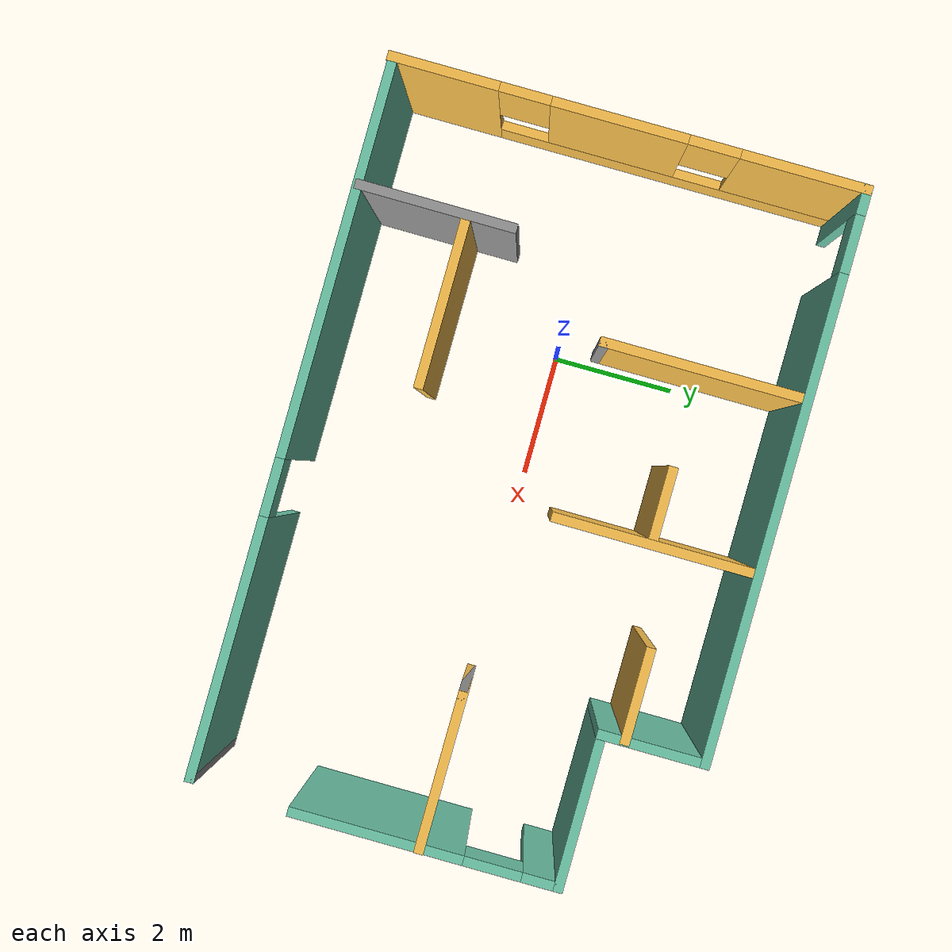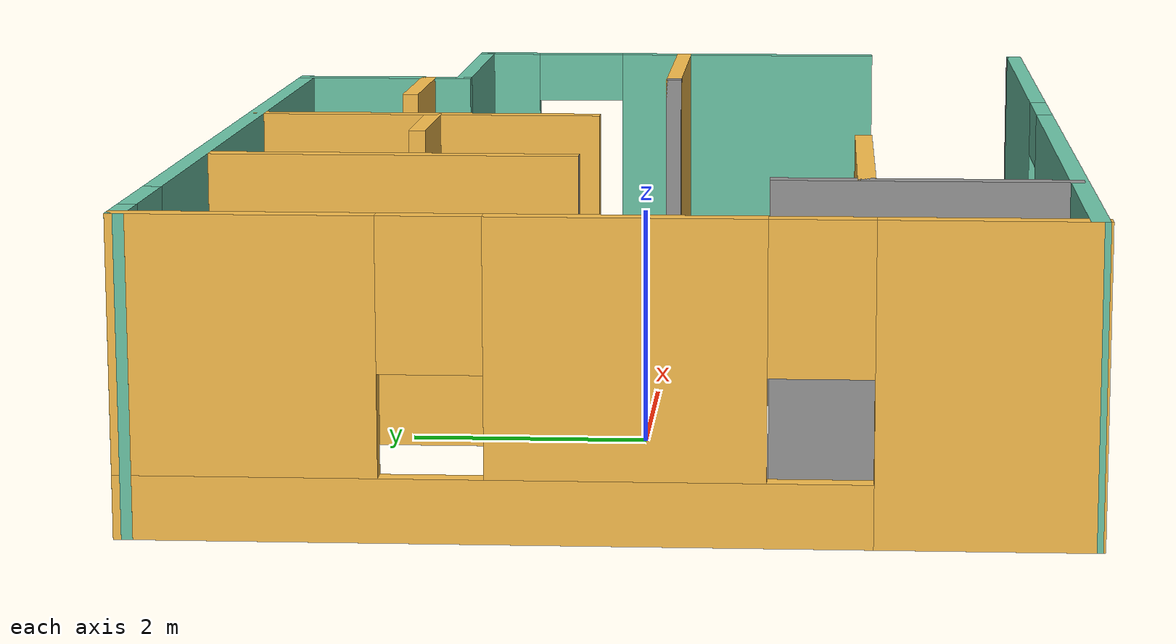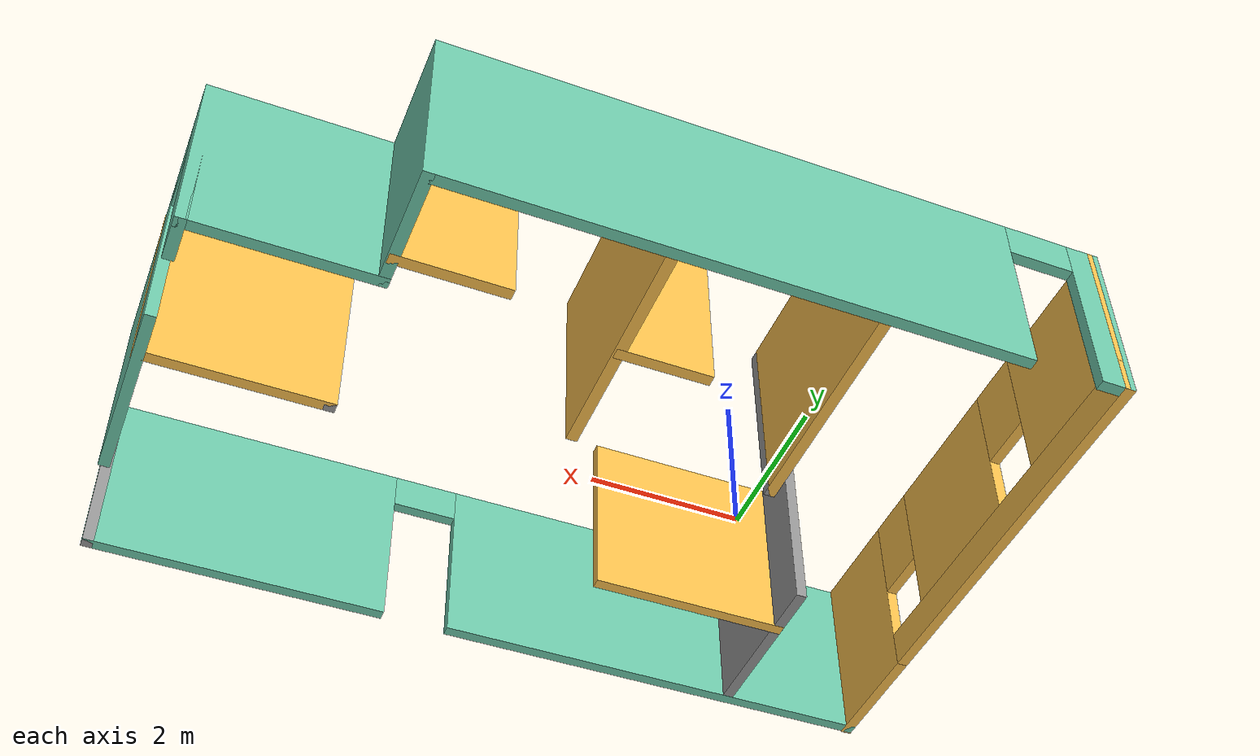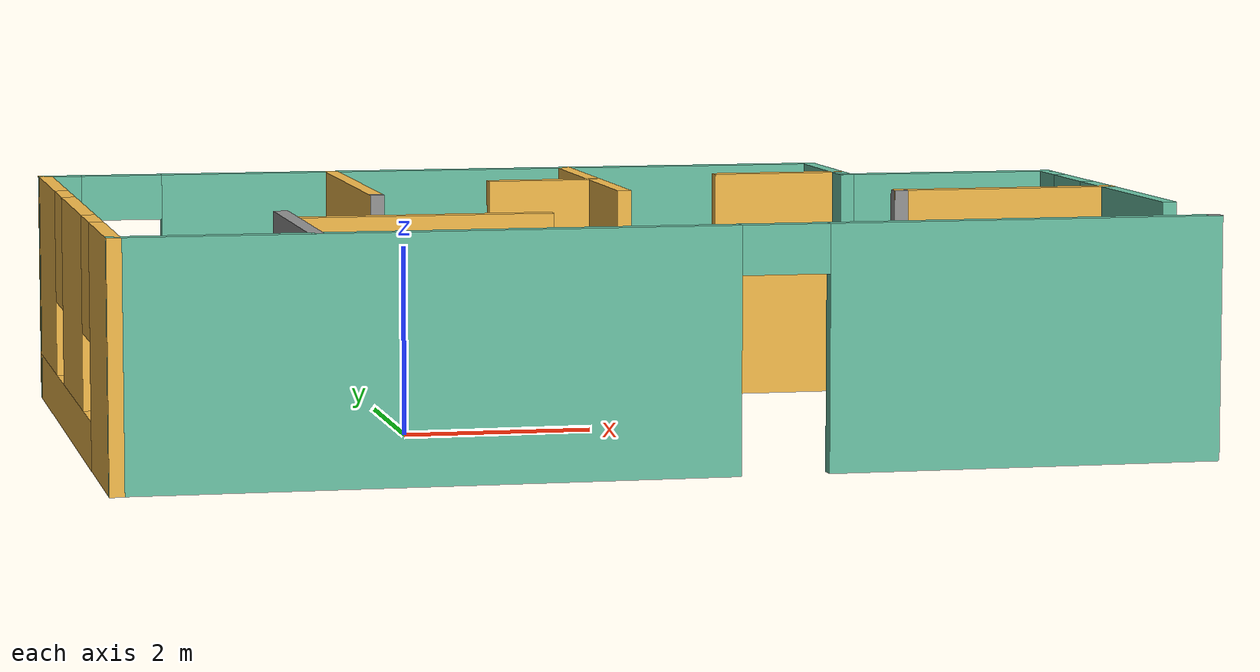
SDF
<?xml version='1.0'?>
<sdf version='1.6'>
  <model name='yuwei.world'>
    <pose frame=''>2.17403 0.111665 0 0 -0 0</pose>
    <link name='Wall_0'>
      <pose frame=''>-5.59742 0 0 0 -0 1.5726</pose>
      <visual name='Wall_0_Visual_0'>
        <pose frame=''>-2.8701 0 1.25 0 -0 0</pose>
        <geometry>
          <box>
            <size>1.72648 0.15 2.5</size>
          </box>
        </geometry>
        <material>
          <script>
            <uri>file://media/materials/scripts/gazebo.material</uri>
            <name>Gazebo/Grey</name>
          </script>
          <ambient>1 0.764706 0.305882 1</ambient>
        </material>
      </visual>
      <collision name='Wall_0_Collision_0'>
        <geometry>
          <box>
            <size>1.72648 0.15 2.5</size>
          </box>
        </geometry>
        <pose frame=''>-2.8701 0 1.25 0 -0 0</pose>
      </collision>
      <visual name='Wall_0_Visual_1'>
        <pose frame=''>0.86324 0 0.25 0 -0 0</pose>
        <geometry>
          <box>
            <size>5.7402 0.15 0.5</size>
          </box>
        </geometry>
        <material>
          <script>
            <uri>file://media/materials/scripts/gazebo.material</uri>
            <name>Gazebo/Grey</name>
          </script>
          <ambient>1 0.764706 0.305882 1</ambient>
        </material>
      </visual>
      <collision name='Wall_0_Collision_1'>
        <geometry>
          <box>
            <size>5.7402 0.15 0.5</size>
          </box>
        </geometry>
        <pose frame=''>0.86324 0 0.25 0 -0 0</pose>
      </collision>
      <visual name='Wall_0_Visual_2'>
        <pose frame=''>-0.146775 0 1.5 0 -0 0</pose>
        <geometry>
          <box>
            <size>2.12017 0.15 2</size>
          </box>
        </geometry>
        <material>
          <script>
            <uri>file://media/materials/scripts/gazebo.material</uri>
            <name>Gazebo/Grey</name>
          </script>
          <ambient>1 0.764706 0.305882 1</ambient>
        </material>
      </visual>
      <collision name='Wall_0_Collision_2'>
        <geometry>
          <box>
            <size>2.12017 0.15 2</size>
          </box>
        </geometry>
        <pose frame=''>-0.146775 0 1.5 0 -0 0</pose>
      </collision>
      <visual name='Wall_0_Visual_3'>
        <pose frame=''>2.72333 0 1.5 0 -0 0</pose>
        <geometry>
          <box>
            <size>2.02003 0.15 2</size>
          </box>
        </geometry>
        <material>
          <script>
            <uri>file://media/materials/scripts/gazebo.material</uri>
            <name>Gazebo/Grey</name>
          </script>
          <ambient>1 0.764706 0.305882 1</ambient>
        </material>
      </visual>
      <collision name='Wall_0_Collision_3'>
        <geometry>
          <box>
            <size>2.02003 0.15 2</size>
          </box>
        </geometry>
        <pose frame=''>2.72333 0 1.5 0 -0 0</pose>
      </collision>
      <visual name='Wall_0_Visual_4'>
        <pose frame=''>-1.60686 0 1.9 0 -0 0</pose>
        <geometry>
          <box>
            <size>0.8 0.15 1.2</size>
          </box>
        </geometry>
        <material>
          <script>
            <uri>file://media/materials/scripts/gazebo.material</uri>
            <name>Gazebo/Grey</name>
          </script>
          <ambient>1 0.764706 0.305882 1</ambient>
        </material>
      </visual>
      <collision name='Wall_0_Collision_4'>
        <geometry>
          <box>
            <size>0.8 0.15 1.2</size>
          </box>
        </geometry>
        <pose frame=''>-1.60686 0 1.9 0 -0 0</pose>
      </collision>
      <visual name='Wall_0_Visual_5'>
        <pose frame=''>1.31331 0 1.9 0 -0 0</pose>
        <geometry>
          <box>
            <size>0.8 0.15 1.2</size>
          </box>
        </geometry>
        <material>
          <script>
            <uri>file://media/materials/scripts/gazebo.material</uri>
            <name>Gazebo/Grey</name>
          </script>
          <ambient>1 0.764706 0.305882 1</ambient>
        </material>
      </visual>
      <collision name='Wall_0_Collision_5'>
        <geometry>
          <box>
            <size>0.8 0.15 1.2</size>
          </box>
        </geometry>
        <pose frame=''>1.31331 0 1.9 0 -0 0</pose>
      </collision>
    </link>
    <link name='Wall_1'>
      <pose frame=''>-1.17904 3.65834 0 0 -0 0</pose>
      <visual name='Wall_1_Visual_0'>
        <pose frame=''>-4.26539 0 1.25 0 -0 0</pose>
        <geometry>
          <box>
            <size>0.469225 0.15 2.5</size>
          </box>
        </geometry>
        <material>
          <script>
            <uri>file://media/materials/scripts/gazebo.material</uri>
            <name>Gazebo/Grey</name>
          </script>
          <ambient>0.435294 0.796078 0.67451 1</ambient>
        </material>
      </visual>
      <collision name='Wall_1_Collision_0'>
        <geometry>
          <box>
            <size>0.469225 0.15 2.5</size>
          </box>
        </geometry>
        <pose frame=''>-4.26539 0 1.25 0 -0 0</pose>
      </collision>
      <visual name='Wall_1_Visual_1'>
        <pose frame=''>0.684613 0 1.25 0 -0 0</pose>
        <geometry>
          <box>
            <size>7.63077 0.15 2.5</size>
          </box>
        </geometry>
        <material>
          <script>
            <uri>file://media/materials/scripts/gazebo.material</uri>
            <name>Gazebo/Grey</name>
          </script>
          <ambient>0.435294 0.796078 0.67451 1</ambient>
        </material>
      </visual>
      <collision name='Wall_1_Collision_1'>
        <geometry>
          <box>
            <size>7.63077 0.15 2.5</size>
          </box>
        </geometry>
        <pose frame=''>0.684613 0 1.25 0 -0 0</pose>
      </collision>
      <visual name='Wall_1_Visual_2'>
        <pose frame=''>-3.58078 0 2.25 0 -0 0</pose>
        <geometry>
          <box>
            <size>0.9 0.15 0.5</size>
          </box>
        </geometry>
        <material>
          <script>
            <uri>file://media/materials/scripts/gazebo.material</uri>
            <name>Gazebo/Grey</name>
          </script>
          <ambient>0.435294 0.796078 0.67451 1</ambient>
        </material>
      </visual>
      <collision name='Wall_1_Collision_2'>
        <geometry>
          <box>
            <size>0.9 0.15 0.5</size>
          </box>
        </geometry>
        <pose frame=''>-3.58078 0 2.25 0 -0 0</pose>
      </collision>
    </link>
    <link name='Wall_10'>
      <collision name='Wall_10_Collision'>
        <geometry>
          <box>
            <size>0.15 0.15 2.5</size>
          </box>
        </geometry>
        <pose frame=''>0 0 1.25 0 -0 0</pose>
      </collision>
      <visual name='Wall_10_Visual'>
        <pose frame=''>0 0 1.25 0 -0 0</pose>
        <geometry>
          <box>
            <size>0.15 0.15 2.5</size>
          </box>
        </geometry>
        <material>
          <script>
            <uri>file://media/materials/scripts/gazebo.material</uri>
            <name>Gazebo/Grey</name>
          </script>
          <ambient>1 1 1 1</ambient>
        </material>
      </visual>
      <pose frame=''>-2.36608 0.522435 0 0 -0 0</pose>
    </link>
    <link name='Wall_12'>
      <collision name='Wall_12_Collision'>
        <geometry>
          <box>
            <size>3.25 0.15 2.5</size>
          </box>
        </geometry>
        <pose frame=''>0 0 1.25 0 -0 0</pose>
      </collision>
      <visual name='Wall_12_Visual'>
        <pose frame=''>0 0 1.25 0 -0 0</pose>
        <geometry>
          <box>
            <size>3.25 0.15 2.5</size>
          </box>
        </geometry>
        <material>
          <script>
            <uri>file://media/materials/scripts/gazebo.material</uri>
            <name>Gazebo/Grey</name>
          </script>
          <ambient>1 0.764706 0.305882 1</ambient>
        </material>
      </visual>
      <pose frame=''>0.331815 2.08566 0 0 0 -1.5708</pose>
    </link>
    <link name='Wall_14'>
      <collision name='Wall_14_Collision'>
        <geometry>
          <box>
            <size>1.25 0.15 2.5</size>
          </box>
        </geometry>
        <pose frame=''>0 0 1.25 0 -0 0</pose>
      </collision>
      <visual name='Wall_14_Visual'>
        <pose frame=''>0 0 1.25 0 -0 0</pose>
        <geometry>
          <box>
            <size>1.25 0.15 2.5</size>
          </box>
        </geometry>
        <material>
          <script>
            <uri>file://media/materials/scripts/gazebo.material</uri>
            <name>Gazebo/Grey</name>
          </script>
          <ambient>1 0.764706 0.305882 1</ambient>
        </material>
      </visual>
      <pose frame=''>-0.244635 2.00899 0 0 -0 3.14159</pose>
    </link>
    <link name='Wall_16'>
      <collision name='Wall_16_Collision'>
        <geometry>
          <box>
            <size>2.5 0.15 2.5</size>
          </box>
        </geometry>
        <pose frame=''>0 0 1.25 0 -0 0</pose>
      </collision>
      <visual name='Wall_16_Visual'>
        <pose frame=''>0 0 1.25 0 -0 0</pose>
        <geometry>
          <box>
            <size>2.5 0.15 2.5</size>
          </box>
        </geometry>
        <material>
          <script>
            <uri>file://media/materials/scripts/gazebo.material</uri>
            <name>Gazebo/Grey</name>
          </script>
          <ambient>1 1 1 1</ambient>
        </material>
      </visual>
      <pose frame=''>-3.63016 -2.43196 0 0 -0 1.5708</pose>
    </link>
    <link name='Wall_18'>
      <collision name='Wall_18_Collision'>
        <geometry>
          <box>
            <size>1.5 0.15 2.5</size>
          </box>
        </geometry>
        <pose frame=''>0 0 1.25 0 -0 0</pose>
      </collision>
      <visual name='Wall_18_Visual'>
        <pose frame=''>0 0 1.25 0 -0 0</pose>
        <geometry>
          <box>
            <size>1.5 0.15 2.5</size>
          </box>
        </geometry>
        <material>
          <script>
            <uri>file://media/materials/scripts/gazebo.material</uri>
            <name>Gazebo/Grey</name>
          </script>
          <ambient>1 0.764706 0.305882 1</ambient>
        </material>
      </visual>
      <pose frame=''>2.55309 2.41896 0 0 -0 3.14159</pose>
    </link>
    <link name='Wall_2'>
      <collision name='Wall_2_Collision'>
        <geometry>
          <box>
            <size>1.75 0.15 2.5</size>
          </box>
        </geometry>
        <pose frame=''>0 0 1.25 0 -0 0</pose>
      </collision>
      <visual name='Wall_2_Visual'>
        <pose frame=''>0 0 1.25 0 -0 0</pose>
        <geometry>
          <box>
            <size>1.75 0.15 2.5</size>
          </box>
        </geometry>
        <material>
          <script>
            <uri>file://media/materials/scripts/gazebo.material</uri>
            <name>Gazebo/Grey</name>
          </script>
          <ambient>0.435294 0.796078 0.67451 1</ambient>
        </material>
      </visual>
      <pose frame=''>3.24596 2.85833 0 0 0 -1.5708</pose>
    </link>
    <link name='Wall_20'>
      <collision name='Wall_20_Collision'>
        <geometry>
          <box>
            <size>2.5 0.15 2.5</size>
          </box>
        </geometry>
        <pose frame=''>0 0 1.25 0 -0 0</pose>
      </collision>
      <visual name='Wall_20_Visual'>
        <pose frame=''>0 0 1.25 0 -0 0</pose>
        <geometry>
          <box>
            <size>2.5 0.15 2.5</size>
          </box>
        </geometry>
        <material>
          <script>
            <uri>file://media/materials/scripts/gazebo.material</uri>
            <name>Gazebo/Grey</name>
          </script>
          <ambient>1 0.764706 0.305882 1</ambient>
        </material>
      </visual>
      <pose frame=''>4.42917 -0.083377 0 0 -0 3.14159</pose>
    </link>
    <link name='Wall_21'>
      <collision name='Wall_21_Collision'>
        <geometry>
          <box>
            <size>0.15 0.15 2.5</size>
          </box>
        </geometry>
        <pose frame=''>0 0 1.25 0 -0 0</pose>
      </collision>
      <visual name='Wall_21_Visual'>
        <pose frame=''>0 0 1.25 0 -0 0</pose>
        <geometry>
          <box>
            <size>0.15 0.15 2.5</size>
          </box>
        </geometry>
        <material>
          <script>
            <uri>file://media/materials/scripts/gazebo.material</uri>
            <name>Gazebo/Grey</name>
          </script>
          <ambient>1 1 1 1</ambient>
        </material>
      </visual>
      <pose frame=''>3.25417 -0.083377 0 0 -0 0</pose>
    </link>
    <link name='Wall_23'>
      <collision name='Wall_23_Collision'>
        <geometry>
          <box>
            <size>2.75 0.15 2.5</size>
          </box>
        </geometry>
        <pose frame=''>0 0 1.25 0 -0 0</pose>
      </collision>
      <visual name='Wall_23_Visual'>
        <pose frame=''>0 0 1.25 0 -0 0</pose>
        <geometry>
          <box>
            <size>2.75 0.15 2.5</size>
          </box>
        </geometry>
        <material>
          <script>
            <uri>file://media/materials/scripts/gazebo.material</uri>
            <name>Gazebo/Grey</name>
          </script>
          <ambient>1 0.764706 0.305882 1</ambient>
        </material>
      </visual>
      <pose frame=''>-2.3297 -1.95481 0 0 -0 3.14159</pose>
    </link>
    <link name='Wall_3'>
      <collision name='Wall_3_Collision'>
        <geometry>
          <box>
            <size>2.5 0.15 2.5</size>
          </box>
        </geometry>
        <pose frame=''>0 0 1.25 0 -0 0</pose>
      </collision>
      <visual name='Wall_3_Visual'>
        <pose frame=''>0 0 1.25 0 -0 0</pose>
        <geometry>
          <box>
            <size>2.5 0.15 2.5</size>
          </box>
        </geometry>
        <material>
          <script>
            <uri>file://media/materials/scripts/gazebo.material</uri>
            <name>Gazebo/Grey</name>
          </script>
          <ambient>0.435294 0.796078 0.67451 1</ambient>
        </material>
      </visual>
      <pose frame=''>4.42096 2.05834 0 0 -0 0</pose>
    </link>
    <link name='Wall_4'>
      <pose frame=''>5.59596 0.008335 0 0 0 -1.5708</pose>
      <visual name='Wall_4_Visual_0'>
        <pose frame=''>-1.80133 0 1.25 0 -0 0</pose>
        <geometry>
          <box>
            <size>0.647348 0.15 2.5</size>
          </box>
        </geometry>
        <material>
          <script>
            <uri>file://media/materials/scripts/gazebo.material</uri>
            <name>Gazebo/Grey</name>
          </script>
          <ambient>0.435294 0.796078 0.67451 1</ambient>
        </material>
      </visual>
      <collision name='Wall_4_Collision_0'>
        <geometry>
          <box>
            <size>0.647348 0.15 2.5</size>
          </box>
        </geometry>
        <pose frame=''>-1.80133 0 1.25 0 -0 0</pose>
      </collision>
      <visual name='Wall_4_Visual_1'>
        <pose frame=''>0.773674 0 1.25 0 -0 0</pose>
        <geometry>
          <box>
            <size>2.70265 0.15 2.5</size>
          </box>
        </geometry>
        <material>
          <script>
            <uri>file://media/materials/scripts/gazebo.material</uri>
            <name>Gazebo/Grey</name>
          </script>
          <ambient>0.435294 0.796078 0.67451 1</ambient>
        </material>
      </visual>
      <collision name='Wall_4_Collision_1'>
        <geometry>
          <box>
            <size>2.70265 0.15 2.5</size>
          </box>
        </geometry>
        <pose frame=''>0.773674 0 1.25 0 -0 0</pose>
      </collision>
      <visual name='Wall_4_Visual_2'>
        <pose frame=''>-1.02765 0 2.25 0 -0 0</pose>
        <geometry>
          <box>
            <size>0.9 0.15 0.5</size>
          </box>
        </geometry>
        <material>
          <script>
            <uri>file://media/materials/scripts/gazebo.material</uri>
            <name>Gazebo/Grey</name>
          </script>
          <ambient>0.435294 0.796078 0.67451 1</ambient>
        </material>
      </visual>
      <collision name='Wall_4_Collision_2'>
        <geometry>
          <box>
            <size>0.9 0.15 0.5</size>
          </box>
        </geometry>
        <pose frame=''>-1.02765 0 2.25 0 -0 0</pose>
      </collision>
    </link>
    <link name='Wall_6'>
      <collision name='Wall_6_Collision'>
        <geometry>
          <box>
            <size>0.15 0.15 2.5</size>
          </box>
        </geometry>
        <pose frame=''>0 0 1.25 0 -0 0</pose>
      </collision>
      <visual name='Wall_6_Visual'>
        <pose frame=''>0 0 1.25 0 -0 0</pose>
        <geometry>
          <box>
            <size>0.15 0.15 2.5</size>
          </box>
        </geometry>
        <material>
          <script>
            <uri>file://media/materials/scripts/gazebo.material</uri>
            <name>Gazebo/Grey</name>
          </script>
          <ambient>1 1 1 1</ambient>
        </material>
      </visual>
      <pose frame=''>5.50919 -3.64085 0 0 -0 0</pose>
    </link>
    <link name='Wall_7'>
      <pose frame=''>-0.04081 -3.64085 0 0 -0 3.14159</pose>
      <visual name='Wall_7_Visual_0'>
        <pose frame=''>-3.5779 0 1.25 0 -0 0</pose>
        <geometry>
          <box>
            <size>4.09421 0.15 2.5</size>
          </box>
        </geometry>
        <material>
          <script>
            <uri>file://media/materials/scripts/gazebo.material</uri>
            <name>Gazebo/Grey</name>
          </script>
          <ambient>0.435294 0.796078 0.67451 1</ambient>
        </material>
      </visual>
      <collision name='Wall_7_Collision_0'>
        <geometry>
          <box>
            <size>4.09421 0.15 2.5</size>
          </box>
        </geometry>
        <pose frame=''>-3.5779 0 1.25 0 -0 0</pose>
      </collision>
      <visual name='Wall_7_Visual_1'>
        <pose frame=''>2.4971 0 1.25 0 -0 0</pose>
        <geometry>
          <box>
            <size>6.25579 0.15 2.5</size>
          </box>
        </geometry>
        <material>
          <script>
            <uri>file://media/materials/scripts/gazebo.material</uri>
            <name>Gazebo/Grey</name>
          </script>
          <ambient>0.435294 0.796078 0.67451 1</ambient>
        </material>
      </visual>
      <collision name='Wall_7_Collision_1'>
        <geometry>
          <box>
            <size>6.25579 0.15 2.5</size>
          </box>
        </geometry>
        <pose frame=''>2.4971 0 1.25 0 -0 0</pose>
      </collision>
      <visual name='Wall_7_Visual_2'>
        <pose frame=''>-1.08079 0 2.25 0 -0 0</pose>
        <geometry>
          <box>
            <size>0.9 0.15 0.5</size>
          </box>
        </geometry>
        <material>
          <script>
            <uri>file://media/materials/scripts/gazebo.material</uri>
            <name>Gazebo/Grey</name>
          </script>
          <ambient>0.435294 0.796078 0.67451 1</ambient>
        </material>
      </visual>
      <collision name='Wall_7_Collision_2'>
        <geometry>
          <box>
            <size>0.9 0.15 0.5</size>
          </box>
        </geometry>
        <pose frame=''>-1.08079 0 2.25 0 -0 0</pose>
      </collision>
    </link>
    <link name='Wall_9'>
      <collision name='Wall_9_Collision'>
        <geometry>
          <box>
            <size>3.25 0.15 2.5</size>
          </box>
        </geometry>
        <pose frame=''>0 0 1.25 0 -0 0</pose>
      </collision>
      <visual name='Wall_9_Visual'>
        <pose frame=''>0 0 1.25 0 -0 0</pose>
        <geometry>
          <box>
            <size>3.25 0.15 2.5</size>
          </box>
        </geometry>
        <material>
          <script>
            <uri>file://media/materials/scripts/gazebo.material</uri>
            <name>Gazebo/Grey</name>
          </script>
          <ambient>1 0.764706 0.305882 1</ambient>
        </material>
      </visual>
      <pose frame=''>-2.36608 2.07244 0 0 0 -1.5708</pose>
    </link>
    <static>1</static>
  </model>
</sdf>
